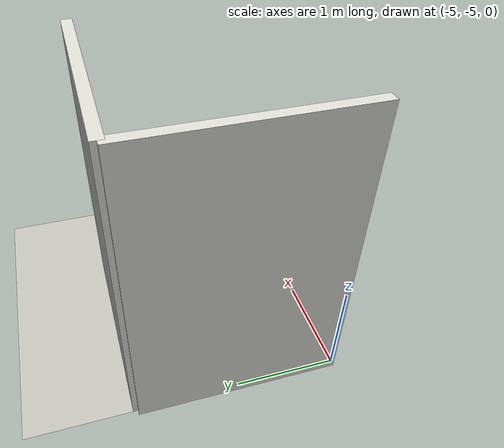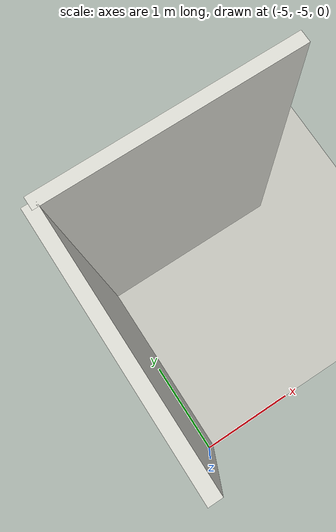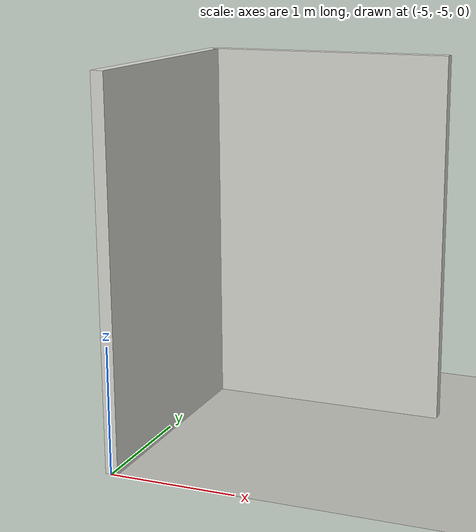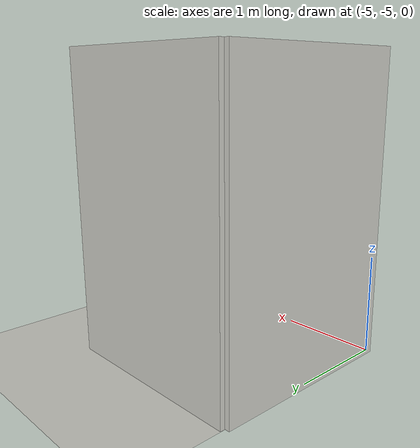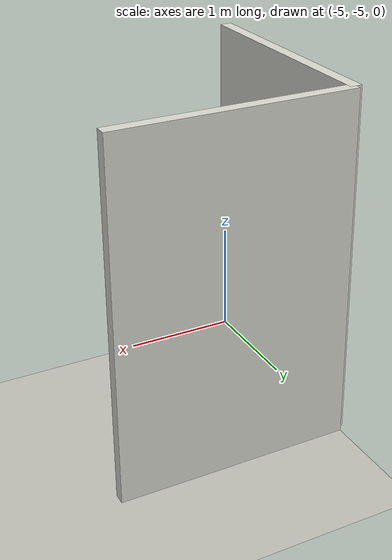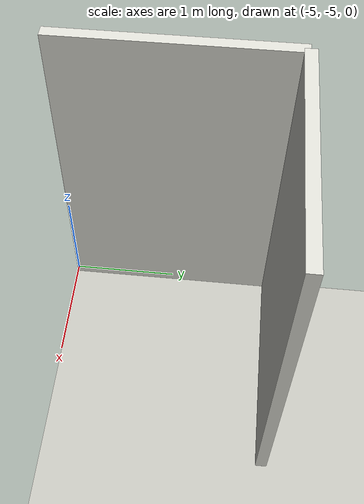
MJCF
<mujoco model="test_LiDAR">
    <compiler inertiafromgeom="true"/>
    <worldbody>
        <!-- ================================================================
             1. 기본 공장 바닥 및 조명
             ================================================================ -->
        <geom name="floor" type="plane" size="5 5 0.1" rgba="0.75 0.75 0.72 1" friction="1.0 0.005 0.0001"/>
        <light directional="true" diffuse=".8 .8 .8" specular=".3 .3 .3" pos="0 0 5" dir="0 0 -1"/>
        <!-- 보조 조명 -->
        <light directional="false" diffuse=".4 .4 .4" specular=".1 .1 .1" pos="3 3 3.5" dir="-0.3 -0.3 -1"/>
        <light directional="false" diffuse=".4 .4 .4" specular=".1 .1 .1" pos="-3 -3 3.5" dir="0.3 0.3 -1"/>

        <!-- ================================================================
             2. 벽 (로봇 기준 왼쪽, 정면)
             ================================================================ -->
        <geom name="wall1" type="box" size="1 0.05 1.5" pos="-4 -3 1.5" rgba="0.85 0.85 0.82 1"/>
        <geom name="wall2" type="box" size="0.05 1 1.5" pos="-5 -4 1.5" rgba="0.85 0.85 0.82 1"/>

    </worldbody>
</mujoco>
